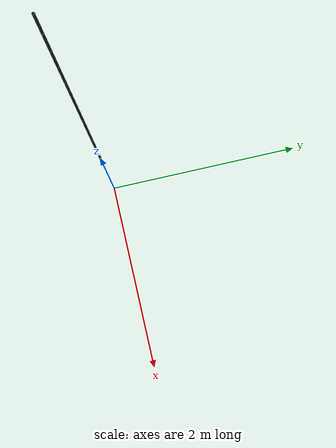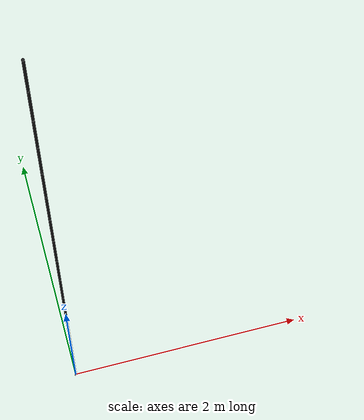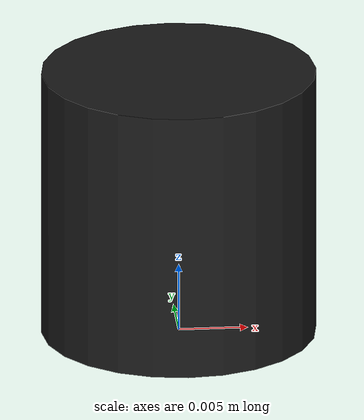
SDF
<?xml version="1.0" ?>
<sdf version="1.9">
    <model name="tether">
        <pose>0 0 0 0 0 0</pose>
        <self_collide>false</self_collide>

        <!-- Link de Base para conexão com o barco via âncora -->
        <link name="link_base">
            <pose>0 0 0.01 0 0 0</pose>
            <inertial>
                <mass>0.01</mass>
                <inertia>
                    <ixx>0.00001</ixx><iyy>0.00001</iyy><izz>0.00001</izz>
                </inertia>
            </inertial>
            <visual name="visual">
                <geometry><cylinder><radius>0.01</radius><length>0.02</length></cylinder></geometry>
                <material><ambient>0.2 0.2 0.2 1</ambient><diffuse>0.1 0.1 0.1 1</diffuse></material>
            </visual>
        </link>

        <link name="link_0">
            <pose>0 0 0.27 0 0 0</pose>
            <inertial>
                <mass>0.01</mass>
                <inertia>
                    <ixx>0.00020858333333333333</ixx><iyy>0.00020858333333333333</iyy><izz>5.000000000000001e-07</izz>
                </inertia>
            </inertial>
            <velocity_decay>
                <linear>0.8</linear><angular>0.8</angular>
            </velocity_decay>
            <visual name="visual">
                <geometry><cylinder><radius>0.01</radius><length>0.475</length></cylinder></geometry>
                <material><ambient>0.2 0.2 0.2 1</ambient><diffuse>0.1 0.1 0.1 1</diffuse></material>
            </visual>
            <collision name="collision">
                <geometry><cylinder><radius>0.01</radius><length>0.475</length></cylinder></geometry>
            </collision>
        </link>
        <link name="link_1">
            <pose>0 0 0.77 0 0 0</pose>
            <inertial>
                <mass>0.01</mass>
                <inertia>
                    <ixx>0.00020858333333333333</ixx><iyy>0.00020858333333333333</iyy><izz>5.000000000000001e-07</izz>
                </inertia>
            </inertial>
            <velocity_decay>
                <linear>0.8</linear><angular>0.8</angular>
            </velocity_decay>
            <visual name="visual">
                <geometry><cylinder><radius>0.01</radius><length>0.475</length></cylinder></geometry>
                <material><ambient>0.2 0.2 0.2 1</ambient><diffuse>0.1 0.1 0.1 1</diffuse></material>
            </visual>
            <collision name="collision">
                <geometry><cylinder><radius>0.01</radius><length>0.475</length></cylinder></geometry>
            </collision>
        </link>
        <link name="link_2">
            <pose>0 0 1.27 0 0 0</pose>
            <inertial>
                <mass>0.01</mass>
                <inertia>
                    <ixx>0.00020858333333333333</ixx><iyy>0.00020858333333333333</iyy><izz>5.000000000000001e-07</izz>
                </inertia>
            </inertial>
            <velocity_decay>
                <linear>0.8</linear><angular>0.8</angular>
            </velocity_decay>
            <visual name="visual">
                <geometry><cylinder><radius>0.01</radius><length>0.475</length></cylinder></geometry>
                <material><ambient>0.2 0.2 0.2 1</ambient><diffuse>0.1 0.1 0.1 1</diffuse></material>
            </visual>
            <collision name="collision">
                <geometry><cylinder><radius>0.01</radius><length>0.475</length></cylinder></geometry>
            </collision>
        </link>
        <link name="link_3">
            <pose>0 0 1.77 0 0 0</pose>
            <inertial>
                <mass>0.01</mass>
                <inertia>
                    <ixx>0.00020858333333333333</ixx><iyy>0.00020858333333333333</iyy><izz>5.000000000000001e-07</izz>
                </inertia>
            </inertial>
            <velocity_decay>
                <linear>0.8</linear><angular>0.8</angular>
            </velocity_decay>
            <visual name="visual">
                <geometry><cylinder><radius>0.01</radius><length>0.475</length></cylinder></geometry>
                <material><ambient>0.2 0.2 0.2 1</ambient><diffuse>0.1 0.1 0.1 1</diffuse></material>
            </visual>
            <collision name="collision">
                <geometry><cylinder><radius>0.01</radius><length>0.475</length></cylinder></geometry>
            </collision>
        </link>
        <link name="link_4">
            <pose>0 0 2.27 0 0 0</pose>
            <inertial>
                <mass>0.01</mass>
                <inertia>
                    <ixx>0.00020858333333333333</ixx><iyy>0.00020858333333333333</iyy><izz>5.000000000000001e-07</izz>
                </inertia>
            </inertial>
            <velocity_decay>
                <linear>0.8</linear><angular>0.8</angular>
            </velocity_decay>
            <visual name="visual">
                <geometry><cylinder><radius>0.01</radius><length>0.475</length></cylinder></geometry>
                <material><ambient>0.2 0.2 0.2 1</ambient><diffuse>0.1 0.1 0.1 1</diffuse></material>
            </visual>
            <collision name="collision">
                <geometry><cylinder><radius>0.01</radius><length>0.475</length></cylinder></geometry>
            </collision>
        </link>
        <link name="link_5">
            <pose>0 0 2.77 0 0 0</pose>
            <inertial>
                <mass>0.01</mass>
                <inertia>
                    <ixx>0.00020858333333333333</ixx><iyy>0.00020858333333333333</iyy><izz>5.000000000000001e-07</izz>
                </inertia>
            </inertial>
            <velocity_decay>
                <linear>0.8</linear><angular>0.8</angular>
            </velocity_decay>
            <visual name="visual">
                <geometry><cylinder><radius>0.01</radius><length>0.475</length></cylinder></geometry>
                <material><ambient>0.2 0.2 0.2 1</ambient><diffuse>0.1 0.1 0.1 1</diffuse></material>
            </visual>
            <collision name="collision">
                <geometry><cylinder><radius>0.01</radius><length>0.475</length></cylinder></geometry>
            </collision>
        </link>
        <link name="link_6">
            <pose>0 0 3.27 0 0 0</pose>
            <inertial>
                <mass>0.01</mass>
                <inertia>
                    <ixx>0.00020858333333333333</ixx><iyy>0.00020858333333333333</iyy><izz>5.000000000000001e-07</izz>
                </inertia>
            </inertial>
            <velocity_decay>
                <linear>0.8</linear><angular>0.8</angular>
            </velocity_decay>
            <visual name="visual">
                <geometry><cylinder><radius>0.01</radius><length>0.475</length></cylinder></geometry>
                <material><ambient>0.2 0.2 0.2 1</ambient><diffuse>0.1 0.1 0.1 1</diffuse></material>
            </visual>
            <collision name="collision">
                <geometry><cylinder><radius>0.01</radius><length>0.475</length></cylinder></geometry>
            </collision>
        </link>
        <link name="link_7">
            <pose>0 0 3.77 0 0 0</pose>
            <inertial>
                <mass>0.01</mass>
                <inertia>
                    <ixx>0.00020858333333333333</ixx><iyy>0.00020858333333333333</iyy><izz>5.000000000000001e-07</izz>
                </inertia>
            </inertial>
            <velocity_decay>
                <linear>0.8</linear><angular>0.8</angular>
            </velocity_decay>
            <visual name="visual">
                <geometry><cylinder><radius>0.01</radius><length>0.475</length></cylinder></geometry>
                <material><ambient>0.2 0.2 0.2 1</ambient><diffuse>0.1 0.1 0.1 1</diffuse></material>
            </visual>
            <collision name="collision">
                <geometry><cylinder><radius>0.01</radius><length>0.475</length></cylinder></geometry>
            </collision>
        </link>
        <link name="link_8">
            <pose>0 0 4.27 0 0 0</pose>
            <inertial>
                <mass>0.01</mass>
                <inertia>
                    <ixx>0.00020858333333333333</ixx><iyy>0.00020858333333333333</iyy><izz>5.000000000000001e-07</izz>
                </inertia>
            </inertial>
            <velocity_decay>
                <linear>0.8</linear><angular>0.8</angular>
            </velocity_decay>
            <visual name="visual">
                <geometry><cylinder><radius>0.01</radius><length>0.475</length></cylinder></geometry>
                <material><ambient>0.2 0.2 0.2 1</ambient><diffuse>0.1 0.1 0.1 1</diffuse></material>
            </visual>
            <collision name="collision">
                <geometry><cylinder><radius>0.01</radius><length>0.475</length></cylinder></geometry>
            </collision>
        </link>
        <link name="link_9">
            <pose>0 0 4.77 0 0 0</pose>
            <inertial>
                <mass>0.01</mass>
                <inertia>
                    <ixx>0.00020858333333333333</ixx><iyy>0.00020858333333333333</iyy><izz>5.000000000000001e-07</izz>
                </inertia>
            </inertial>
            <velocity_decay>
                <linear>0.8</linear><angular>0.8</angular>
            </velocity_decay>
            <visual name="visual">
                <geometry><cylinder><radius>0.01</radius><length>0.475</length></cylinder></geometry>
                <material><ambient>0.2 0.2 0.2 1</ambient><diffuse>0.1 0.1 0.1 1</diffuse></material>
            </visual>
            <collision name="collision">
                <geometry><cylinder><radius>0.01</radius><length>0.475</length></cylinder></geometry>
            </collision>
        </link>
        <link name="link_10">
            <pose>0 0 5.27 0 0 0</pose>
            <inertial>
                <mass>0.01</mass>
                <inertia>
                    <ixx>0.00020858333333333333</ixx><iyy>0.00020858333333333333</iyy><izz>5.000000000000001e-07</izz>
                </inertia>
            </inertial>
            <velocity_decay>
                <linear>0.8</linear><angular>0.8</angular>
            </velocity_decay>
            <visual name="visual">
                <geometry><cylinder><radius>0.01</radius><length>0.475</length></cylinder></geometry>
                <material><ambient>0.2 0.2 0.2 1</ambient><diffuse>0.1 0.1 0.1 1</diffuse></material>
            </visual>
            <collision name="collision">
                <geometry><cylinder><radius>0.01</radius><length>0.475</length></cylinder></geometry>
            </collision>
        </link>
        <link name="link_11">
            <pose>0 0 5.77 0 0 0</pose>
            <inertial>
                <mass>0.01</mass>
                <inertia>
                    <ixx>0.00020858333333333333</ixx><iyy>0.00020858333333333333</iyy><izz>5.000000000000001e-07</izz>
                </inertia>
            </inertial>
            <velocity_decay>
                <linear>0.8</linear><angular>0.8</angular>
            </velocity_decay>
            <visual name="visual">
                <geometry><cylinder><radius>0.01</radius><length>0.475</length></cylinder></geometry>
                <material><ambient>0.2 0.2 0.2 1</ambient><diffuse>0.1 0.1 0.1 1</diffuse></material>
            </visual>
            <collision name="collision">
                <geometry><cylinder><radius>0.01</radius><length>0.475</length></cylinder></geometry>
            </collision>
        </link>
        <link name="link_12">
            <pose>0 0 6.27 0 0 0</pose>
            <inertial>
                <mass>0.01</mass>
                <inertia>
                    <ixx>0.00020858333333333333</ixx><iyy>0.00020858333333333333</iyy><izz>5.000000000000001e-07</izz>
                </inertia>
            </inertial>
            <velocity_decay>
                <linear>0.8</linear><angular>0.8</angular>
            </velocity_decay>
            <visual name="visual">
                <geometry><cylinder><radius>0.01</radius><length>0.475</length></cylinder></geometry>
                <material><ambient>0.2 0.2 0.2 1</ambient><diffuse>0.1 0.1 0.1 1</diffuse></material>
            </visual>
            <collision name="collision">
                <geometry><cylinder><radius>0.01</radius><length>0.475</length></cylinder></geometry>
            </collision>
        </link>
        <link name="link_13">
            <pose>0 0 6.77 0 0 0</pose>
            <inertial>
                <mass>0.01</mass>
                <inertia>
                    <ixx>0.00020858333333333333</ixx><iyy>0.00020858333333333333</iyy><izz>5.000000000000001e-07</izz>
                </inertia>
            </inertial>
            <velocity_decay>
                <linear>0.8</linear><angular>0.8</angular>
            </velocity_decay>
            <visual name="visual">
                <geometry><cylinder><radius>0.01</radius><length>0.475</length></cylinder></geometry>
                <material><ambient>0.2 0.2 0.2 1</ambient><diffuse>0.1 0.1 0.1 1</diffuse></material>
            </visual>
            <collision name="collision">
                <geometry><cylinder><radius>0.01</radius><length>0.475</length></cylinder></geometry>
            </collision>
        </link>
        <link name="link_14">
            <pose>0 0 7.27 0 0 0</pose>
            <inertial>
                <mass>0.01</mass>
                <inertia>
                    <ixx>0.00020858333333333333</ixx><iyy>0.00020858333333333333</iyy><izz>5.000000000000001e-07</izz>
                </inertia>
            </inertial>
            <velocity_decay>
                <linear>0.8</linear><angular>0.8</angular>
            </velocity_decay>
            <visual name="visual">
                <geometry><cylinder><radius>0.01</radius><length>0.475</length></cylinder></geometry>
                <material><ambient>0.2 0.2 0.2 1</ambient><diffuse>0.1 0.1 0.1 1</diffuse></material>
            </visual>
            <collision name="collision">
                <geometry><cylinder><radius>0.01</radius><length>0.475</length></cylinder></geometry>
            </collision>
        </link>
        <joint name="joint_base" type="universal">
            <parent>link_base</parent><child>link_0</child>
            <pose>0 0 -0.25 0 0 0</pose>
            <axis><xyz>1 0 0</xyz><dynamics><damping>0.1</damping><friction>0.05</friction></dynamics></axis>
            <axis2><xyz>0 1 0</xyz><dynamics><damping>0.1</damping><friction>0.05</friction></dynamics></axis2>
        </joint>
        <joint name="joint_0" type="universal">
            <parent>link_0</parent><child>link_1</child>
            <pose>0 0 -0.25 0 0 0</pose>
            <axis><xyz>1 0 0</xyz><dynamics><damping>0.1</damping><friction>0.05</friction></dynamics></axis>
            <axis2><xyz>0 1 0</xyz><dynamics><damping>0.1</damping><friction>0.05</friction></dynamics></axis2>
        </joint>
        <joint name="joint_1" type="universal">
            <parent>link_1</parent><child>link_2</child>
            <pose>0 0 -0.25 0 0 0</pose>
            <axis><xyz>1 0 0</xyz><dynamics><damping>0.1</damping><friction>0.05</friction></dynamics></axis>
            <axis2><xyz>0 1 0</xyz><dynamics><damping>0.1</damping><friction>0.05</friction></dynamics></axis2>
        </joint>
        <joint name="joint_2" type="universal">
            <parent>link_2</parent><child>link_3</child>
            <pose>0 0 -0.25 0 0 0</pose>
            <axis><xyz>1 0 0</xyz><dynamics><damping>0.1</damping><friction>0.05</friction></dynamics></axis>
            <axis2><xyz>0 1 0</xyz><dynamics><damping>0.1</damping><friction>0.05</friction></dynamics></axis2>
        </joint>
        <joint name="joint_3" type="universal">
            <parent>link_3</parent><child>link_4</child>
            <pose>0 0 -0.25 0 0 0</pose>
            <axis><xyz>1 0 0</xyz><dynamics><damping>0.1</damping><friction>0.05</friction></dynamics></axis>
            <axis2><xyz>0 1 0</xyz><dynamics><damping>0.1</damping><friction>0.05</friction></dynamics></axis2>
        </joint>
        <joint name="joint_4" type="universal">
            <parent>link_4</parent><child>link_5</child>
            <pose>0 0 -0.25 0 0 0</pose>
            <axis><xyz>1 0 0</xyz><dynamics><damping>0.1</damping><friction>0.05</friction></dynamics></axis>
            <axis2><xyz>0 1 0</xyz><dynamics><damping>0.1</damping><friction>0.05</friction></dynamics></axis2>
        </joint>
        <joint name="joint_5" type="universal">
            <parent>link_5</parent><child>link_6</child>
            <pose>0 0 -0.25 0 0 0</pose>
            <axis><xyz>1 0 0</xyz><dynamics><damping>0.1</damping><friction>0.05</friction></dynamics></axis>
            <axis2><xyz>0 1 0</xyz><dynamics><damping>0.1</damping><friction>0.05</friction></dynamics></axis2>
        </joint>
        <joint name="joint_6" type="universal">
            <parent>link_6</parent><child>link_7</child>
            <pose>0 0 -0.25 0 0 0</pose>
            <axis><xyz>1 0 0</xyz><dynamics><damping>0.1</damping><friction>0.05</friction></dynamics></axis>
            <axis2><xyz>0 1 0</xyz><dynamics><damping>0.1</damping><friction>0.05</friction></dynamics></axis2>
        </joint>
        <joint name="joint_7" type="universal">
            <parent>link_7</parent><child>link_8</child>
            <pose>0 0 -0.25 0 0 0</pose>
            <axis><xyz>1 0 0</xyz><dynamics><damping>0.1</damping><friction>0.05</friction></dynamics></axis>
            <axis2><xyz>0 1 0</xyz><dynamics><damping>0.1</damping><friction>0.05</friction></dynamics></axis2>
        </joint>
        <joint name="joint_8" type="universal">
            <parent>link_8</parent><child>link_9</child>
            <pose>0 0 -0.25 0 0 0</pose>
            <axis><xyz>1 0 0</xyz><dynamics><damping>0.1</damping><friction>0.05</friction></dynamics></axis>
            <axis2><xyz>0 1 0</xyz><dynamics><damping>0.1</damping><friction>0.05</friction></dynamics></axis2>
        </joint>
        <joint name="joint_9" type="universal">
            <parent>link_9</parent><child>link_10</child>
            <pose>0 0 -0.25 0 0 0</pose>
            <axis><xyz>1 0 0</xyz><dynamics><damping>0.1</damping><friction>0.05</friction></dynamics></axis>
            <axis2><xyz>0 1 0</xyz><dynamics><damping>0.1</damping><friction>0.05</friction></dynamics></axis2>
        </joint>
        <joint name="joint_10" type="universal">
            <parent>link_10</parent><child>link_11</child>
            <pose>0 0 -0.25 0 0 0</pose>
            <axis><xyz>1 0 0</xyz><dynamics><damping>0.1</damping><friction>0.05</friction></dynamics></axis>
            <axis2><xyz>0 1 0</xyz><dynamics><damping>0.1</damping><friction>0.05</friction></dynamics></axis2>
        </joint>
        <joint name="joint_11" type="universal">
            <parent>link_11</parent><child>link_12</child>
            <pose>0 0 -0.25 0 0 0</pose>
            <axis><xyz>1 0 0</xyz><dynamics><damping>0.1</damping><friction>0.05</friction></dynamics></axis>
            <axis2><xyz>0 1 0</xyz><dynamics><damping>0.1</damping><friction>0.05</friction></dynamics></axis2>
        </joint>
        <joint name="joint_12" type="universal">
            <parent>link_12</parent><child>link_13</child>
            <pose>0 0 -0.25 0 0 0</pose>
            <axis><xyz>1 0 0</xyz><dynamics><damping>0.1</damping><friction>0.05</friction></dynamics></axis>
            <axis2><xyz>0 1 0</xyz><dynamics><damping>0.1</damping><friction>0.05</friction></dynamics></axis2>
        </joint>
        <joint name="joint_13" type="universal">
            <parent>link_13</parent><child>link_14</child>
            <pose>0 0 -0.25 0 0 0</pose>
            <axis><xyz>1 0 0</xyz><dynamics><damping>0.1</damping><friction>0.05</friction></dynamics></axis>
            <axis2><xyz>0 1 0</xyz><dynamics><damping>0.1</damping><friction>0.05</friction></dynamics></axis2>
        </joint>
    </model>
</sdf>
